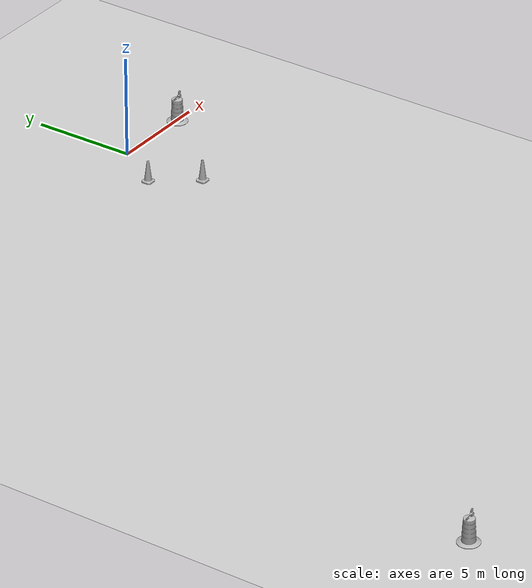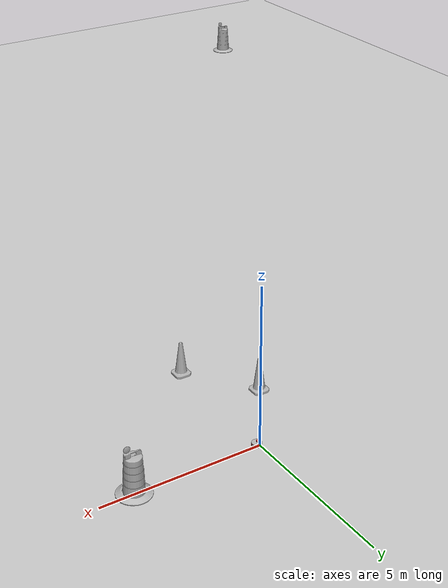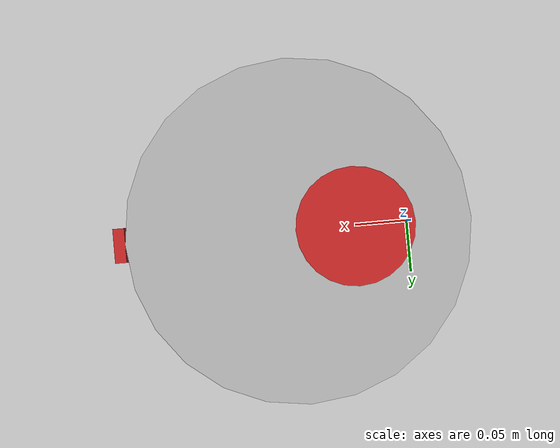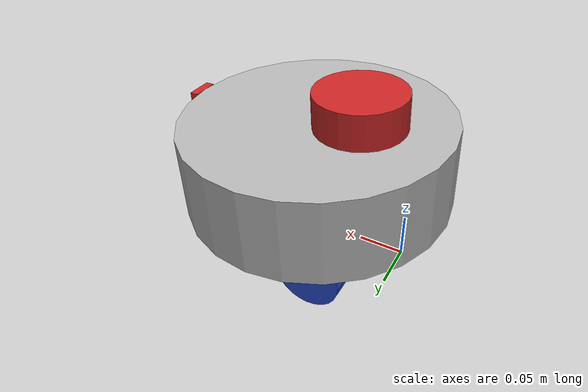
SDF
<sdf version="1.7">
 <world name="default">
  <light name="sun" type="directional">
   <pose>0 0 10 0 -0 0</pose>
   <diffuse>0.8 0.8 0.8 1</diffuse>
   <specular>0.2 0.2 0.2 1</specular>
   <attenuation>
    <range>1000</range>
    <constant>0.9</constant>
    <linear>0.01</linear>
    <quadratic>0.001</quadratic>
   </attenuation>
   <direction>-0.5 0.1 -0.9</direction>
   <spot><inner_angle>0</inner_angle><outer_angle>0</outer_angle><falloff>0</falloff></spot>
  </light>
  <model name="ground_plane">
   <static>1</static>
   <link name="link">
    <collision name="collision">
     <geometry><plane><normal>0 0 1</normal><size>100 100</size></plane></geometry>
     <surface>
      <contact><collide_bitmask>65535</collide_bitmask></contact>
      <friction><ode><mu>100</mu><mu2>50</mu2></ode></friction>
     </surface>
    </collision>
    <visual name="visual">
     <cast_shadows>0</cast_shadows>
     <geometry><plane><normal>0 0 1</normal><size>100 100</size></plane></geometry>
     <material>
      <script><uri>file://media/materials/scripts/gazebo.material</uri><name>Gazebo/Grey</name></script>
     </material>
    </visual>
   </link>
  </model>
  <gravity>0 0 -9.8</gravity>
  <magnetic_field>6e-06 2.3e-05 -4.2e-05</magnetic_field>
  <atmosphere type="adiabatic"/>
  <physics type="ode">
   <max_step_size>0.001</max_step_size>
   <real_time_factor>1</real_time_factor>
   <real_time_update_rate>1000</real_time_update_rate>
  </physics>
  <scene><ambient>0.4 0.4 0.4 1</ambient><background>0.7 0.7 0.7 1</background><shadows>1</shadows></scene>
  <spherical_coordinates>
   <surface_model>EARTH_WGS84</surface_model>
   <latitude_deg>0</latitude_deg>
   <longitude_deg>0</longitude_deg>
   <elevation>0</elevation>
   <heading_deg>0</heading_deg>
  </spherical_coordinates>
  <model name="my_bot">
   <link name="base_link">
    <inertial>
     <pose>0.055 0 0.0725 0 -0 0</pose>
     <mass>0.4</mass>
     <inertia>
      <ixx>0.0021225</ixx>
      <ixy>0</ixy>
      <ixz>0.000785</ixz>
      <iyy>0.0031425</iyy>
      <iyz>0</iyz>
      <izz>0.003495</izz>
     </inertia>
    </inertial>
    <collision name="base_link_fixed_joint_lump__chassis_link_collision">
     <pose>0.045 0 0.0675 0 -0 0</pose>
     <geometry><cylinder><length>0.095</length><radius>0.15</radius></cylinder></geometry>
    </collision>
    <collision name="base_link_fixed_joint_lump__caster_wheel_collision_1">
     <pose>0.135 0 0.02 0 -0 0</pose>
     <geometry><sphere><radius>0.05</radius></sphere></geometry>
     <surface><friction><ode><mu>0.0001</mu><mu2>0.0001</mu2></ode></friction></surface>
    </collision>
    <collision name="base_link_fixed_joint_lump__laser_frame_collision_2">
     <pose>-0.005 0 0.135 0 -0 0</pose>
     <geometry><cylinder><length>0.04</length><radius>0.05</radius></cylinder></geometry>
    </collision>
    <visual name="base_link_fixed_joint_lump__chassis_link_visual">
     <pose>0.045 0 0.0675 0 -0 0</pose>
     <geometry><cylinder><length>0.095</length><radius>0.15</radius></cylinder></geometry>
    </visual>
    <visual name="base_link_fixed_joint_lump__camera_frame_visual_1">
     <pose>0.2 0 0.1 0 -0 0</pose>
     <geometry><box><size>0.01 0.03 0.03</size></box></geometry>
     <material>
      <script><name>Gazebo/Red</name><uri>file://media/materials/scripts/gazebo.material</uri></script>
     </material>
    </visual>
    <visual name="base_link_fixed_joint_lump__caster_wheel_visual_2">
     <pose>0.135 0 0.02 0 -0 0</pose>
     <geometry><sphere><radius>0.05</radius></sphere></geometry>
     <material>
      <script><name>Gazebo/Black</name><uri>file://media/materials/scripts/gazebo.material</uri></script>
     </material>
    </visual>
    <visual name="base_link_fixed_joint_lump__laser_frame_visual_3">
     <pose>-0.005 0 0.135 0 -0 0</pose>
     <geometry><cylinder><length>0.04</length><radius>0.05</radius></cylinder></geometry>
     <material>
      <script><name>Gazebo/Red</name><uri>file://media/materials/scripts/gazebo.material</uri></script>
     </material>
    </visual>
    <sensor name="camera" type="camera">
     <visualize>1</visualize>
     <update_rate>10</update_rate>
     <camera>
      <horizontal_fov>1.089</horizontal_fov>
      <image><format>R8G8B8</format><width>640</width><height>480</height></image>
      <clip><near>0.05</near><far>8</far></clip>
     </camera>
     <plugin name="camera_controller" filename="libgazebo_ros_camera.so">
      <frame_name>camera_frame_optical</frame_name>
     </plugin>
     <pose>0.2 0 0.1 0 -0 0</pose>
    </sensor>
    <sensor name="laser" type="ray">
     <visualize>0</visualize>
     <update_rate>10</update_rate>
     <ray>
      <scan>
       <horizontal>
        <samples>360</samples>
        <resolution>1</resolution>
        <min_angle>-3.14</min_angle>
        <max_angle>3.14</max_angle>
       </horizontal>
       <vertical><samples>1</samples><min_angle>0</min_angle><max_angle>0</max_angle></vertical>
      </scan>
      <range><min>0.3</min><max>12</max><resolution>0.01</resolution></range>
     </ray>
     <plugin name="laser_controller" filename="libgazebo_ros_ray_sensor.so">
      <ros><argument>~/out:=scan</argument></ros>
      <output_type>sensor_msgs/LaserScan</output_type>
      <frame_name>laser_frame</frame_name>
     </plugin>
     <pose>-0.005 0 0.135 0 -0 0</pose>
    </sensor>
   </link>
   <joint name="left_wheel_joint" type="revolute">
    <pose relative_to="base_link">0 0.1 0 -1.5708 0 0</pose>
    <parent>base_link</parent>
    <child>left_wheel</child>
    <axis>
     <xyz>0 0 1</xyz>
     <limit><lower>-1e+16</lower><upper>1e+16</upper></limit>
     <dynamics><spring_reference>0</spring_reference><spring_stiffness>0</spring_stiffness></dynamics>
    </axis>
   </joint>
   <link name="left_wheel">
    <pose relative_to="left_wheel_joint">0 0 0 0 -0 0</pose>
    <inertial>
     <mass>0.1</mass>
     <inertia>
      <ixx>3.62583e-05</ixx>
      <ixy>0</ixy>
      <ixz>0</ixz>
      <iyy>3.62583e-05</iyy>
      <iyz>0</iyz>
      <izz>6.125e-05</izz>
     </inertia>
    </inertial>
    <collision name="left_wheel_collision">
     <geometry><sphere><radius>0.035</radius></sphere></geometry>
    </collision>
    <visual name="left_wheel_visual">
     <geometry><cylinder><length>0.026</length><radius>0.035</radius></cylinder></geometry>
     <material>
      <script><name>Gazebo/Blue</name><uri>file://media/materials/scripts/gazebo.material</uri></script>
     </material>
    </visual>
   </link>
   <joint name="right_wheel_joint" type="revolute">
    <pose relative_to="base_link">0 -0.1 0 1.5708 -0 0</pose>
    <parent>base_link</parent>
    <child>right_wheel</child>
    <axis>
     <xyz>0 0 -1</xyz>
     <limit><lower>-1e+16</lower><upper>1e+16</upper></limit>
     <dynamics><spring_reference>0</spring_reference><spring_stiffness>0</spring_stiffness></dynamics>
    </axis>
   </joint>
   <link name="right_wheel">
    <pose relative_to="right_wheel_joint">0 0 0 0 -0 0</pose>
    <inertial>
     <mass>0.1</mass>
     <inertia>
      <ixx>3.62583e-05</ixx>
      <ixy>0</ixy>
      <ixz>0</ixz>
      <iyy>3.62583e-05</iyy>
      <iyz>0</iyz>
      <izz>6.125e-05</izz>
     </inertia>
    </inertial>
    <collision name="right_wheel_collision">
     <geometry><sphere><radius>0.035</radius></sphere></geometry>
    </collision>
    <visual name="right_wheel_visual">
     <geometry><cylinder><length>0.026</length><radius>0.035</radius></cylinder></geometry>
     <material>
      <script><name>Gazebo/Blue</name><uri>file://media/materials/scripts/gazebo.material</uri></script>
     </material>
    </visual>
   </link>
   <static>0</static>
   <plugin name="gazebo_ros2_control" filename="libgazebo_ros2_control.so">
    <parameters>/home/afshan/Artibot/dev_ws/install/my_bot/share/my_bot/config/my_controllers.yaml</parameters>
   </plugin>
   <pose>0.0584 0.001212 0.034998 1.4e-05 0.036932 -0.004747</pose>
  </model>
  <model name="Construction Barrel">
   <link name="link">
    <inertial>
     <pose>0 0 0.4 0 -0 0</pose>
     <mass>500</mass>
     <inertia><ixx>51.2096</ixx><iyy>51.2096</iyy><izz>25</izz><ixy>0</ixy><ixz>0</ixz><iyz>0</iyz></inertia>
    </inertial>
    <collision name="collision">
     <geometry><mesh><uri>model://construction_barrel/meshes/construction_barrel.dae</uri></mesh></geometry>
    </collision>
    <visual name="visual">
     <geometry><mesh><uri>model://construction_barrel/meshes/construction_barrel.dae</uri></mesh></geometry>
    </visual>
   </link>
   <pose>3.94035 -0.04309 -2e-06 7e-06 -2e-06 -1e-05</pose>
  </model>
  <model name="Construction Cone">
   <link name="link">
    <collision name="collision">
     <geometry>
      <mesh><scale>10 10 10</scale><uri>model://construction_cone/meshes/construction_cone.dae</uri></mesh>
     </geometry>
    </collision>
    <visual name="visual">
     <geometry>
      <mesh><scale>10 10 10</scale><uri>model://construction_cone/meshes/construction_cone.dae</uri></mesh>
     </geometry>
    </visual>
    <inertial>
     <inertia><ixx>1</ixx><ixy>0</ixy><ixz>0</ixz><iyy>1</iyy><iyz>0</iyz><izz>1</izz></inertia>
     <mass>1</mass>
    </inertial>
   </link>
   <pose>-0.016161 -4.27755 -0 0 -0 0</pose>
  </model>
  <model name="Construction Cone_0">
   <link name="link">
    <collision name="collision">
     <geometry>
      <mesh><scale>10 10 10</scale><uri>model://construction_cone/meshes/construction_cone.dae</uri></mesh>
     </geometry>
    </collision>
    <visual name="visual">
     <geometry>
      <mesh><scale>10 10 10</scale><uri>model://construction_cone/meshes/construction_cone.dae</uri></mesh>
     </geometry>
    </visual>
    <inertial>
     <inertia><ixx>1</ixx><ixy>0</ixy><ixz>0</ixz><iyy>1</iyy><iyz>0</iyz><izz>1</izz></inertia>
     <mass>1</mass>
    </inertial>
   </link>
   <pose>-1.51066 -2.27019 -0 0 -1e-06 0</pose>
  </model>
  <model name="Construction Barrel_0">
   <link name="link">
    <inertial>
     <pose>0 0 0.4 0 -0 0</pose>
     <mass>500</mass>
     <inertia><ixx>51.2096</ixx><iyy>51.2096</iyy><izz>25</izz><ixy>0</ixy><ixz>0</ixz><iyz>0</iyz></inertia>
    </inertial>
    <collision name="collision">
     <geometry><mesh><uri>model://construction_barrel/meshes/construction_barrel.dae</uri></mesh></geometry>
    </collision>
    <visual name="visual">
     <geometry><mesh><uri>model://construction_barrel/meshes/construction_barrel.dae</uri></mesh></geometry>
    </visual>
   </link>
   <pose>-17.9859 -30.0549 -5e-06 -9e-06 -9e-06 -7e-06</pose>
  </model>
 </world>
</sdf>
